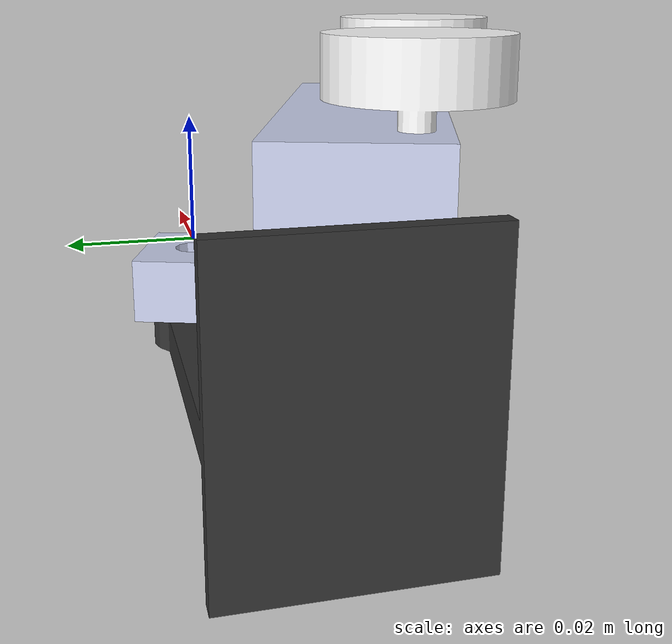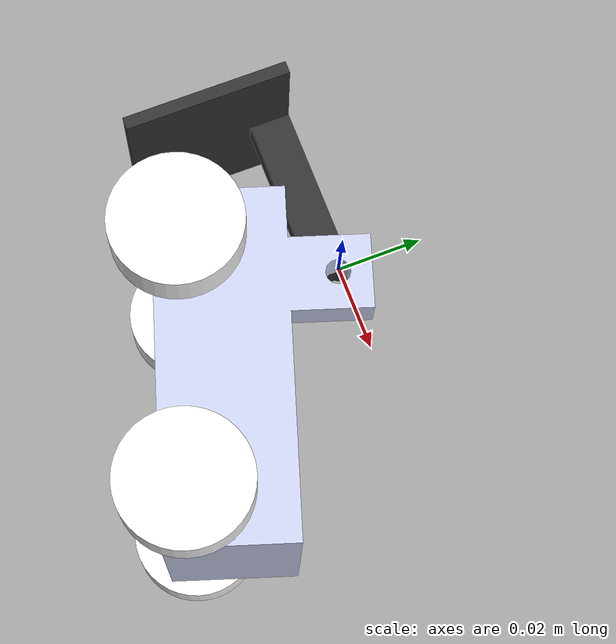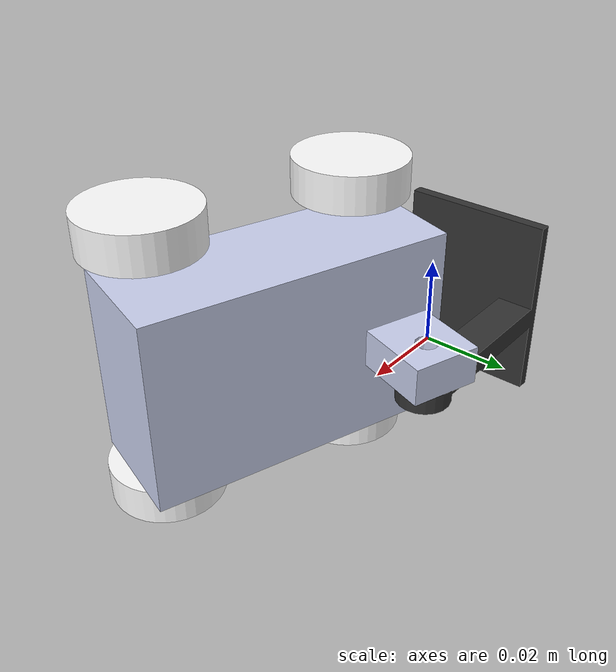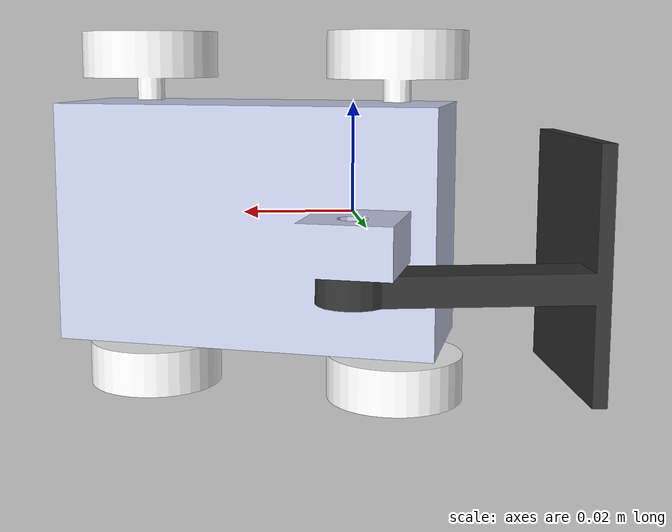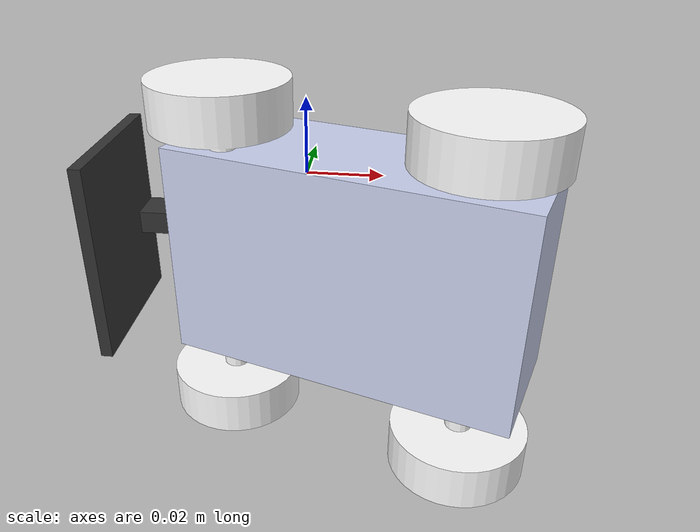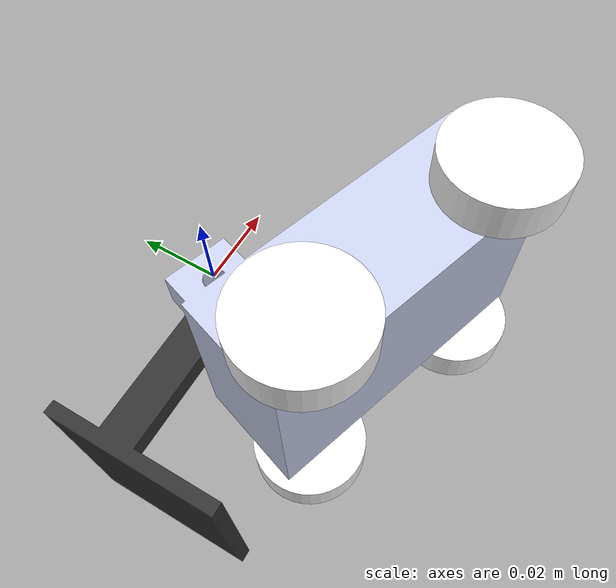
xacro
<?xml version="1.0"?>
<robot xmlns:xacro="http://www.ros.org/wiki/xacro" name="car">
    <xacro:arg name="initial_positions_file" default="initial_positions.yaml" />

    <!-- Import car urdf file -->
    <xacro:include filename="$(find moveit_resources_panda_description)/urdf/car.xacro" />

    <!-- Import control_xacro -->
    <xacro:include filename="car.ros2_control.xacro" />

    <xacro:car_ros2_control name="FakeSystem" initial_positions_file="$(arg initial_positions_file)"/>

</robot>

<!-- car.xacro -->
<robot name="car" xmlns:xacro="http://ros.org/wiki/xacro">

  <xacro:include filename="$(find moveit_resources_panda_description)/urdf/robot.gazebo.xacro" />

  <link
    name="base_link">
    <inertial>
      <origin
        xyz="0.0158429330452572 -0.0327073918217232 -0.00649999999999993"
        rpy="0 0 0" />
      <mass
        value="0.120489823272946" />
      <inertia
        ixx="4.17113752947246E-05"
        ixy="1.74813898344108E-05"
        ixz="-1.94817577868489E-20"
        iyy="8.20514271198057E-05"
        iyz="3.3881317890172E-21"
        izz="7.48856120486068E-05" />
    </inertial>
    <visual>
      <origin
        xyz="0 0 0"
        rpy="0 0 0" />
      <geometry>
        <mesh
          filename="file:///home/tky/carbot_ws/src/panda_description/meshes/base_link.STL" />
      </geometry>
      <material
        name="">
        <color
          rgba="0.792156862745098 0.819607843137255 0.933333333333333 1" />
      </material>
    </visual>
    <collision>
      <origin
        xyz="0 0 0"
        rpy="0 0 0" />
      <geometry>
        <mesh
          filename="file:///home/tky/carbot_ws/src/panda_description/meshes/base_link.STL" />
      </geometry>
    </collision>
  </link>
  <link
    name="rbw">
    <inertial>
      <origin
        xyz="0 -0.013042 -3.4694E-18"
        rpy="0 0 0" />
      <mass
        value="0.0086915" />
      <inertia
        ixx="6.1241E-07"
        ixy="4.1359E-25"
        ixz="-3.1019E-24"
        iyy="9.2466E-07"
        iyz="5.294E-23"
        izz="6.1241E-07" />
    </inertial>
    <visual>
      <origin
        xyz="0 0 0"
        rpy="0 0 0" />
      <geometry>
        <mesh
          filename="file:///home/tky/carbot_ws/src/panda_description/meshes/rbw.STL" />
      </geometry>
      <material
        name="">
        <color
          rgba="1 1 1 1" />
      </material>
    </visual>
    <collision>
      <origin
        xyz="0 0 0"
        rpy="0 0 0" />
      <geometry>
        <mesh
          filename="file:///home/tky/carbot_ws/src/panda_description/meshes/rbw.STL" />
      </geometry>
    </collision>
  </link>
  <joint
    name="rj"
    type="continuous">
    <origin
      xyz="0.0400188760612179 -0.0510929501868593 -0.0277499999999999"
      rpy="1.5707963267949 0 -0.295830428170462" />
    <parent
      link="base_link" />
    <child
      link="rbw" />
    <axis
      xyz="0 1 0" />
  </joint>
  <link
    name="rfw">
    <inertial>
      <origin
        xyz="1.3878E-17 -0.013042 0"
        rpy="0 0 0" />
      <mass
        value="0.0086915" />
      <inertia
        ixx="6.1241E-07"
        ixy="-1.2801E-39"
        ixz="-1.1336E-39"
        iyy="9.2466E-07"
        iyz="0"
        izz="6.1241E-07" />
    </inertial>
    <visual>
      <origin
        xyz="0 0 0"
        rpy="0 0 0" />
      <geometry>
        <mesh
          filename="file:///home/tky/carbot_ws/src/panda_description/meshes/rfw.STL" />
      </geometry>
      <material
        name="">
        <color
          rgba="1 1 1 1" />
      </material>
    </visual>
    <collision>
      <origin
        xyz="0 0 0"
        rpy="0 0 0" />
      <geometry>
        <mesh
          filename="file:///home/tky/carbot_ws/src/panda_description/meshes/rfw.STL" />
      </geometry>
    </collision>
  </link>
  <joint
    name="rfj"
    type="continuous">
    <origin
      xyz="-0.0131673700892644 -0.0335651659452526 -0.02775"
      rpy="1.5707963267949 0 -0.318346054228087" />
    <parent
      link="base_link" />
    <child
      link="rfw" />
    <axis
      xyz="0 1 0" />
  </joint>
  <link
    name="lbw">
    <inertial>
      <origin
        xyz="0 -0.00054245 -6.9389E-18"
        rpy="0 0 0" />
      <mass
        value="0.0086915" />
      <inertia
        ixx="6.1241E-07"
        ixy="-1.2801E-39"
        ixz="-1.1336E-39"
        iyy="9.2466E-07"
        iyz="-5.294E-23"
        izz="6.1241E-07" />
    </inertial>
    <visual>
      <origin
        xyz="0 0 0"
        rpy="0 0 0" />
      <geometry>
        <mesh
          filename="file:///home/tky/carbot_ws/src/panda_description/meshes/lbw.STL" />
      </geometry>
      <material
        name="">
        <color
          rgba="1 1 1 1" />
      </material>
    </visual>
    <collision>
      <origin
        xyz="0 0 0"
        rpy="0 0 0" />
      <geometry>
        <mesh
          filename="file:///home/tky/carbot_ws/src/panda_description/meshes/lbw.STL" />
      </geometry>
    </collision>
  </link>
  <joint
    name="lj"
    type="continuous">
    <origin
      xyz="0.0400188760612179 -0.0510929501868592 0.0272500000000001"
      rpy="-1.5707963267949 0 -0.318346054228087" />
    <parent
      link="base_link" />
    <child
      link="lbw" />
    <axis
      xyz="0 -1 0" />
  </joint>
  <link
    name="lfw">
    <inertial>
      <origin
        xyz="-1.3878E-17 -0.00054245 3.4694E-18"
        rpy="0 0 0" />
      <mass
        value="0.0086915" />
      <inertia
        ixx="6.1241E-07"
        ixy="-1.2801E-39"
        ixz="-1.1336E-39"
        iyy="9.2466E-07"
        iyz="-2.647E-23"
        izz="6.1241E-07" />
    </inertial>
    <visual>
      <origin
        xyz="0 0 0"
        rpy="0 0 0" />
      <geometry>
        <mesh
          filename="file:///home/tky/carbot_ws/src/panda_description/meshes/lfw.STL" />
      </geometry>
      <material
        name="">
        <color
          rgba="1 1 1 1" />
      </material>
    </visual>
    <collision>
      <origin
        xyz="0 0 0"
        rpy="0 0 0" />
      <geometry>
        <mesh
          filename="file:///home/tky/carbot_ws/src/panda_description/meshes/lfw.STL" />
      </geometry>
    </collision>
  </link>
  <joint
    name="lfj"
    type="continuous">
    <origin
      xyz="-0.0131673700892644 -0.0335651659452526 0.02725"
      rpy="-1.5707963267949 0 -0.318346054228087" />
    <parent
      link="base_link" />
    <child
      link="lfw" />
    <axis
      xyz="0 -1 0" />
  </joint>
  <link
    name="pusher">
    <inertial>
      <origin
        xyz="-0.037239 -0.0099261 -0.013177"
        rpy="0 0 0" />
      <mass
        value="0.064376" />
      <inertia
        ixx="1.8137E-05"
        ixy="-5.853E-06"
        ixz="7.8039E-07"
        iyy="2.436E-05"
        iyz="4.323E-07"
        izz="2.4501E-05" />
    </inertial>
    <visual>
      <origin
        xyz="0 0 0"
        rpy="0 0 0" />
      <geometry>
        <mesh
          filename="file:///home/tky/carbot_ws/src/panda_description/meshes/cpusher.STL" />
      </geometry>
      <material
        name="">
        <color
          rgba="0.2 0.2 0.2 1" />
      </material>
    </visual>
    <collision>
      <origin
        xyz="0 0 0"
        rpy="0 0 0" />
      <geometry>
        <mesh
          filename="file:///home/tky/carbot_ws/src/panda_description/meshes/cpusher.STL" />
      </geometry>
    </collision>
  </link>
  <joint
    name="push_joint"
    type="revolute">
    <origin
      xyz="0 0 0"
      rpy="0 0 0" />
    <parent
      link="base_link" />
    <child
      link="pusher" />
    <axis
      xyz="0 0 -1" />
    <limit
      lower="-0.57"
      upper="1.57"
      effort="100"
      velocity="2.01" />
  </joint>

  <gazebo>
      <plugin filename="libgazebo_ros2_control.so" name="gazebo_ros2_control">
            <parameters>$(find config)/config/ros2_controllers.yaml</parameters>
            <robot_param_node>robot_state_publisher</robot_param_node>
            <robotParam>robot_description</robotParam>
      </plugin>
  </gazebo>

  <transmission name="pusher_Link_trans">
    <type>transmission_interface/SimpleTransmission</type>
    <joint name="push_joint">
    <hardwareInterface>PositionJointInterface</hardwareInterface></joint>
    <actuator name="push_Link_motor">
    <hardwareInterface>PositionJointInterface</hardwareInterface>
      <mechanicalReduction>1</mechanicalReduction>
    </actuator>
  </transmission>

  <ros2_control name="GazeboSystem" type="system">
    <hardware>
        <plugin>gazebo_ros2_control/GazeboSystem</plugin>
    </hardware>
    <joint name="push_joint">
        <command_interface name="position"/>
        <state_interface name="position">
            <param name="initial_value">0.0</param>
        </state_interface>
        <state_interface name="velocity"/>
    </joint>
  </ros2_control>
</robot>
